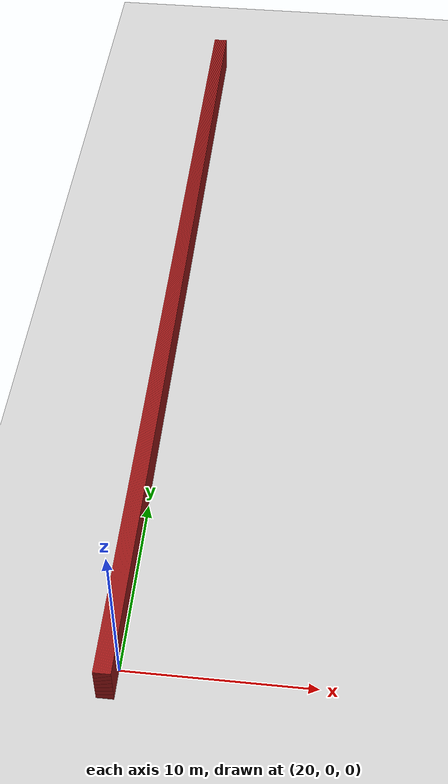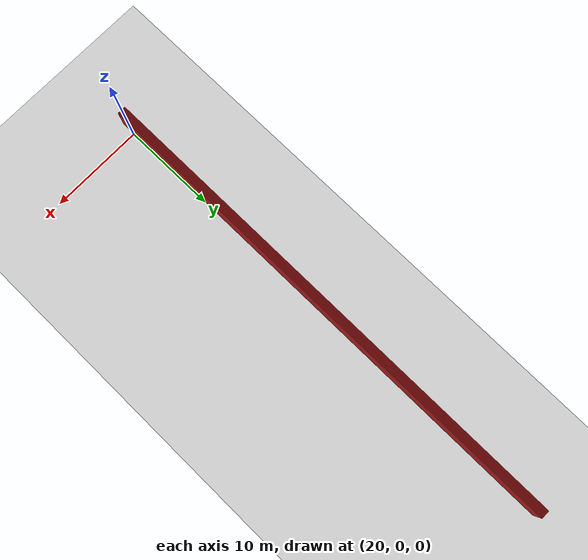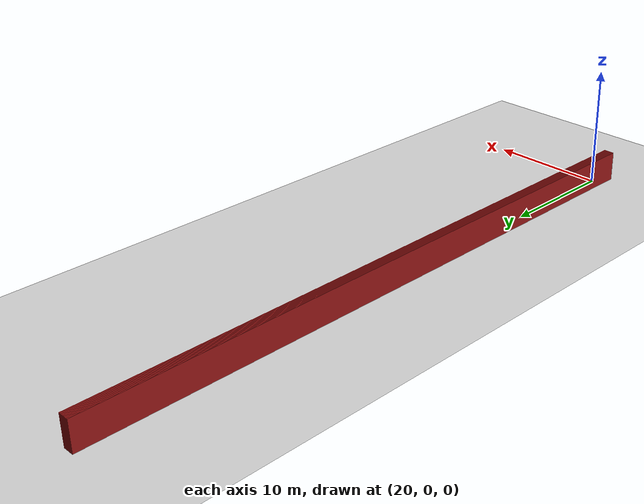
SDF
<sdf version="1.4">
 <world name="1_wall">
  <model name="ground_plane">
   <static>1</static>
   <link name="link">
    <collision name="collision">
     <geometry><plane><normal>0 0 1</normal><size>1000 1000</size></plane></geometry>
     <surface><friction><ode><mu>100</mu><mu2>50</mu2></ode></friction></surface>
    </collision>
    <visual name="visual">
     <cast_shadows>0</cast_shadows>
     <geometry><plane><normal>0 0 1</normal><size>10000 10000</size></plane></geometry>
     <material>
      <script><uri>file://media/materials/scripts/gazebo.material</uri><name>Gazebo/Grey</name></script>
     </material>
    </visual>
    <velocity_decay><linear>0</linear><angular>0</angular></velocity_decay>
   </link>
  </model>
  <model name="Wall_412">
   <static>1</static>
   <link name="Wall_412">
    <collision name="Wall_Collision_412">
     <geometry><box><size>53.65 0.05 2.5</size></box></geometry>
     <pose>0 0 1.25 0 -0 0</pose>
    </collision>
    <visual name="Wall_Visual_412">
     <pose>0 0 1.25 0 -0 0</pose>
     <geometry><box><size>53.65 0.05 2.5</size></box></geometry>
     <material>
      <script><uri>file://media/materials/scripts/gazebo.material</uri><name>Gazebo/Red</name></script>
     </material>
    </visual>
    <velocity_decay><linear>0</linear><angular>0</angular></velocity_decay>
    <pose>19.1 25.3 0 0 0 1.5707963267948966</pose>
   </link>
  </model>
  <model name="Wall_413">
   <static>1</static>
   <link name="Wall_413">
    <collision name="Wall_Collision_413">
     <geometry><box><size>53.65 0.05 2.5</size></box></geometry>
     <pose>0 0 1.25 0 -0 0</pose>
    </collision>
    <visual name="Wall_Visual_413">
     <pose>0 0 1.25 0 -0 0</pose>
     <geometry><box><size>53.65 0.05 2.5</size></box></geometry>
     <material>
      <script><uri>file://media/materials/scripts/gazebo.material</uri><name>Gazebo/Red</name></script>
     </material>
    </visual>
    <velocity_decay><linear>0</linear><angular>0</angular></velocity_decay>
    <pose>19.15 25.3 0 0 0 1.5707963267948966</pose>
   </link>
  </model>
  <model name="Wall_414">
   <static>1</static>
   <link name="Wall_414">
    <collision name="Wall_Collision_414">
     <geometry><box><size>53.65 0.05 2.5</size></box></geometry>
     <pose>0 0 1.25 0 -0 0</pose>
    </collision>
    <visual name="Wall_Visual_414">
     <pose>0 0 1.25 0 -0 0</pose>
     <geometry><box><size>53.65 0.05 2.5</size></box></geometry>
     <material>
      <script><uri>file://media/materials/scripts/gazebo.material</uri><name>Gazebo/Red</name></script>
     </material>
    </visual>
    <velocity_decay><linear>0</linear><angular>0</angular></velocity_decay>
    <pose>19.2 25.3 0 0 0 1.5707963267948966</pose>
   </link>
  </model>
  <model name="Wall_415">
   <static>1</static>
   <link name="Wall_415">
    <collision name="Wall_Collision_415">
     <geometry><box><size>53.65 0.05 2.5</size></box></geometry>
     <pose>0 0 1.25 0 -0 0</pose>
    </collision>
    <visual name="Wall_Visual_415">
     <pose>0 0 1.25 0 -0 0</pose>
     <geometry><box><size>53.65 0.05 2.5</size></box></geometry>
     <material>
      <script><uri>file://media/materials/scripts/gazebo.material</uri><name>Gazebo/Red</name></script>
     </material>
    </visual>
    <velocity_decay><linear>0</linear><angular>0</angular></velocity_decay>
    <pose>19.25 25.3 0 0 0 1.5707963267948966</pose>
   </link>
  </model>
  <model name="Wall_416">
   <static>1</static>
   <link name="Wall_416">
    <collision name="Wall_Collision_416">
     <geometry><box><size>53.65 0.05 2.5</size></box></geometry>
     <pose>0 0 1.25 0 -0 0</pose>
    </collision>
    <visual name="Wall_Visual_416">
     <pose>0 0 1.25 0 -0 0</pose>
     <geometry><box><size>53.65 0.05 2.5</size></box></geometry>
     <material>
      <script><uri>file://media/materials/scripts/gazebo.material</uri><name>Gazebo/Red</name></script>
     </material>
    </visual>
    <velocity_decay><linear>0</linear><angular>0</angular></velocity_decay>
    <pose>19.3 25.3 0 0 0 1.5707963267948966</pose>
   </link>
  </model>
  <model name="Wall_417">
   <static>1</static>
   <link name="Wall_417">
    <collision name="Wall_Collision_417">
     <geometry><box><size>53.65 0.05 2.5</size></box></geometry>
     <pose>0 0 1.25 0 -0 0</pose>
    </collision>
    <visual name="Wall_Visual_417">
     <pose>0 0 1.25 0 -0 0</pose>
     <geometry><box><size>53.65 0.05 2.5</size></box></geometry>
     <material>
      <script><uri>file://media/materials/scripts/gazebo.material</uri><name>Gazebo/Red</name></script>
     </material>
    </visual>
    <velocity_decay><linear>0</linear><angular>0</angular></velocity_decay>
    <pose>19.35 25.3 0 0 0 1.5707963267948966</pose>
   </link>
  </model>
  <model name="Wall_418">
   <static>1</static>
   <link name="Wall_418">
    <collision name="Wall_Collision_418">
     <geometry><box><size>53.65 0.05 2.5</size></box></geometry>
     <pose>0 0 1.25 0 -0 0</pose>
    </collision>
    <visual name="Wall_Visual_418">
     <pose>0 0 1.25 0 -0 0</pose>
     <geometry><box><size>53.65 0.05 2.5</size></box></geometry>
     <material>
      <script><uri>file://media/materials/scripts/gazebo.material</uri><name>Gazebo/Red</name></script>
     </material>
    </visual>
    <velocity_decay><linear>0</linear><angular>0</angular></velocity_decay>
    <pose>19.4 25.3 0 0 0 1.5707963267948966</pose>
   </link>
  </model>
  <model name="Wall_419">
   <static>1</static>
   <link name="Wall_419">
    <collision name="Wall_Collision_419">
     <geometry><box><size>53.65 0.05 2.5</size></box></geometry>
     <pose>0 0 1.25 0 -0 0</pose>
    </collision>
    <visual name="Wall_Visual_419">
     <pose>0 0 1.25 0 -0 0</pose>
     <geometry><box><size>53.65 0.05 2.5</size></box></geometry>
     <material>
      <script><uri>file://media/materials/scripts/gazebo.material</uri><name>Gazebo/Red</name></script>
     </material>
    </visual>
    <velocity_decay><linear>0</linear><angular>0</angular></velocity_decay>
    <pose>19.45 25.3 0 0 0 1.5707963267948966</pose>
   </link>
  </model>
  <model name="Wall_420">
   <static>1</static>
   <link name="Wall_420">
    <collision name="Wall_Collision_420">
     <geometry><box><size>53.65 0.05 2.5</size></box></geometry>
     <pose>0 0 1.25 0 -0 0</pose>
    </collision>
    <visual name="Wall_Visual_420">
     <pose>0 0 1.25 0 -0 0</pose>
     <geometry><box><size>53.65 0.05 2.5</size></box></geometry>
     <material>
      <script><uri>file://media/materials/scripts/gazebo.material</uri><name>Gazebo/Red</name></script>
     </material>
    </visual>
    <velocity_decay><linear>0</linear><angular>0</angular></velocity_decay>
    <pose>19.5 25.3 0 0 0 1.5707963267948966</pose>
   </link>
  </model>
  <model name="Wall_421">
   <static>1</static>
   <link name="Wall_421">
    <collision name="Wall_Collision_421">
     <geometry><box><size>53.65 0.05 2.5</size></box></geometry>
     <pose>0 0 1.25 0 -0 0</pose>
    </collision>
    <visual name="Wall_Visual_421">
     <pose>0 0 1.25 0 -0 0</pose>
     <geometry><box><size>53.65 0.05 2.5</size></box></geometry>
     <material>
      <script><uri>file://media/materials/scripts/gazebo.material</uri><name>Gazebo/Red</name></script>
     </material>
    </visual>
    <velocity_decay><linear>0</linear><angular>0</angular></velocity_decay>
    <pose>19.55 25.3 0 0 0 1.5707963267948966</pose>
   </link>
  </model>
  <model name="Wall_422">
   <static>1</static>
   <link name="Wall_422">
    <collision name="Wall_Collision_422">
     <geometry><box><size>53.65 0.05 2.5</size></box></geometry>
     <pose>0 0 1.25 0 -0 0</pose>
    </collision>
    <visual name="Wall_Visual_422">
     <pose>0 0 1.25 0 -0 0</pose>
     <geometry><box><size>53.65 0.05 2.5</size></box></geometry>
     <material>
      <script><uri>file://media/materials/scripts/gazebo.material</uri><name>Gazebo/Red</name></script>
     </material>
    </visual>
    <velocity_decay><linear>0</linear><angular>0</angular></velocity_decay>
    <pose>19.6 25.3 0 0 0 1.5707963267948966</pose>
   </link>
  </model>
  <model name="Wall_423">
   <static>1</static>
   <link name="Wall_423">
    <collision name="Wall_Collision_423">
     <geometry><box><size>53.65 0.05 2.5</size></box></geometry>
     <pose>0 0 1.25 0 -0 0</pose>
    </collision>
    <visual name="Wall_Visual_423">
     <pose>0 0 1.25 0 -0 0</pose>
     <geometry><box><size>53.65 0.05 2.5</size></box></geometry>
     <material>
      <script><uri>file://media/materials/scripts/gazebo.material</uri><name>Gazebo/Red</name></script>
     </material>
    </visual>
    <velocity_decay><linear>0</linear><angular>0</angular></velocity_decay>
    <pose>19.65 25.3 0 0 0 1.5707963267948966</pose>
   </link>
  </model>
  <model name="Wall_424">
   <static>1</static>
   <link name="Wall_424">
    <collision name="Wall_Collision_424">
     <geometry><box><size>53.65 0.05 2.5</size></box></geometry>
     <pose>0 0 1.25 0 -0 0</pose>
    </collision>
    <visual name="Wall_Visual_424">
     <pose>0 0 1.25 0 -0 0</pose>
     <geometry><box><size>53.65 0.05 2.5</size></box></geometry>
     <material>
      <script><uri>file://media/materials/scripts/gazebo.material</uri><name>Gazebo/Red</name></script>
     </material>
    </visual>
    <velocity_decay><linear>0</linear><angular>0</angular></velocity_decay>
    <pose>19.7 25.3 0 0 0 1.5707963267948966</pose>
   </link>
  </model>
  <model name="Wall_425">
   <static>1</static>
   <link name="Wall_425">
    <collision name="Wall_Collision_425">
     <geometry><box><size>53.65 0.05 2.5</size></box></geometry>
     <pose>0 0 1.25 0 -0 0</pose>
    </collision>
    <visual name="Wall_Visual_425">
     <pose>0 0 1.25 0 -0 0</pose>
     <geometry><box><size>53.65 0.05 2.5</size></box></geometry>
     <material>
      <script><uri>file://media/materials/scripts/gazebo.material</uri><name>Gazebo/Red</name></script>
     </material>
    </visual>
    <velocity_decay><linear>0</linear><angular>0</angular></velocity_decay>
    <pose>19.75 25.3 0 0 0 1.5707963267948966</pose>
   </link>
  </model>
  <model name="Wall_426">
   <static>1</static>
   <link name="Wall_426">
    <collision name="Wall_Collision_426">
     <geometry><box><size>53.65 0.05 2.5</size></box></geometry>
     <pose>0 0 1.25 0 -0 0</pose>
    </collision>
    <visual name="Wall_Visual_426">
     <pose>0 0 1.25 0 -0 0</pose>
     <geometry><box><size>53.65 0.05 2.5</size></box></geometry>
     <material>
      <script><uri>file://media/materials/scripts/gazebo.material</uri><name>Gazebo/Red</name></script>
     </material>
    </visual>
    <velocity_decay><linear>0</linear><angular>0</angular></velocity_decay>
    <pose>19.8 25.3 0 0 0 1.5707963267948966</pose>
   </link>
  </model>
  <model name="Wall_427">
   <static>1</static>
   <link name="Wall_427">
    <collision name="Wall_Collision_427">
     <geometry><box><size>53.65 0.05 2.5</size></box></geometry>
     <pose>0 0 1.25 0 -0 0</pose>
    </collision>
    <visual name="Wall_Visual_427">
     <pose>0 0 1.25 0 -0 0</pose>
     <geometry><box><size>53.65 0.05 2.5</size></box></geometry>
     <material>
      <script><uri>file://media/materials/scripts/gazebo.material</uri><name>Gazebo/Red</name></script>
     </material>
    </visual>
    <velocity_decay><linear>0</linear><angular>0</angular></velocity_decay>
    <pose>19.85 25.3 0 0 0 1.5707963267948966</pose>
   </link>
  </model>
  <model name="Wall_428">
   <static>1</static>
   <link name="Wall_428">
    <collision name="Wall_Collision_428">
     <geometry><box><size>53.65 0.05 2.5</size></box></geometry>
     <pose>0 0 1.25 0 -0 0</pose>
    </collision>
    <visual name="Wall_Visual_428">
     <pose>0 0 1.25 0 -0 0</pose>
     <geometry><box><size>53.65 0.05 2.5</size></box></geometry>
     <material>
      <script><uri>file://media/materials/scripts/gazebo.material</uri><name>Gazebo/Red</name></script>
     </material>
    </visual>
    <velocity_decay><linear>0</linear><angular>0</angular></velocity_decay>
    <pose>19.9 25.3 0 0 0 1.5707963267948966</pose>
   </link>
  </model>
  <model name="Wall_429">
   <static>1</static>
   <link name="Wall_429">
    <collision name="Wall_Collision_429">
     <geometry><box><size>53.65 0.05 2.5</size></box></geometry>
     <pose>0 0 1.25 0 -0 0</pose>
    </collision>
    <visual name="Wall_Visual_429">
     <pose>0 0 1.25 0 -0 0</pose>
     <geometry><box><size>53.65 0.05 2.5</size></box></geometry>
     <material>
      <script><uri>file://media/materials/scripts/gazebo.material</uri><name>Gazebo/Red</name></script>
     </material>
    </visual>
    <velocity_decay><linear>0</linear><angular>0</angular></velocity_decay>
    <pose>19.95 25.3 0 0 0 1.5707963267948966</pose>
   </link>
  </model>
 </world>
</sdf>
